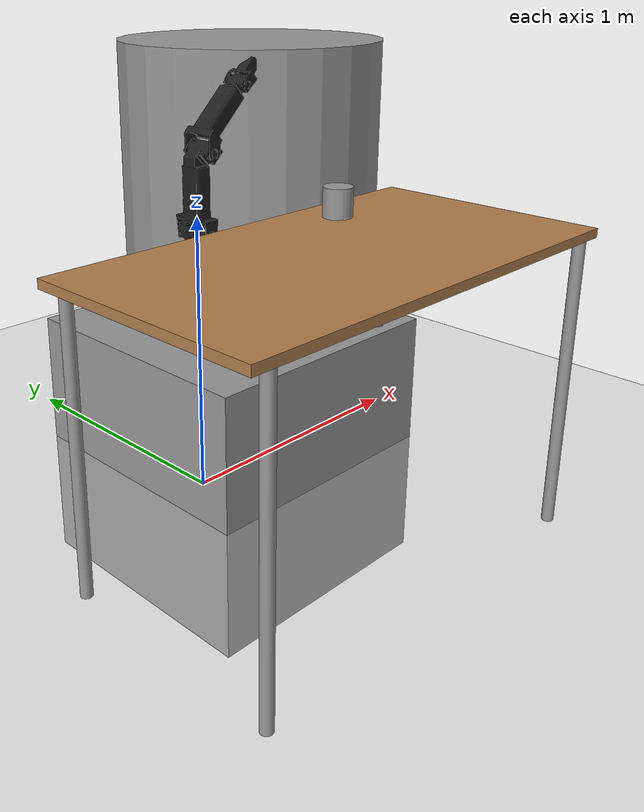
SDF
<sdf version="1.4">
 <world name="default">
  <model name="ground_plane">
   <static>1</static>
   <link name="link">
    <collision name="collision">
     <geometry><plane><normal>0 0 1</normal><size>100 100</size></plane></geometry>
     <surface><friction><ode><mu>100</mu><mu2>50</mu2></ode></friction></surface>
    </collision>
    <visual name="visual">
     <cast_shadows>0</cast_shadows>
     <geometry><plane><normal>0 0 1</normal><size>100 100</size></plane></geometry>
     <material>
      <script><uri>file://media/materials/scripts/gazebo.material</uri><name>Gazebo/Grey</name></script>
     </material>
    </visual>
    <velocity_decay><linear>0</linear><angular>0</angular></velocity_decay>
   </link>
  </model>
  <light name="sun" type="directional">
   <pose>0 0 10 0 -0 0</pose>
   <diffuse>0.8 0.8 0.8 1</diffuse>
   <specular>0.2 0.2 0.2 1</specular>
   <attenuation>
    <range>1000</range>
    <constant>0.9</constant>
    <linear>0.01</linear>
    <quadratic>0.001</quadratic>
   </attenuation>
   <direction>-0.5 0.1 -0.9</direction>
  </light>
  <physics type="ode">
   <max_step_size>0.001</max_step_size>
   <real_time_factor>1</real_time_factor>
   <real_time_update_rate>1000</real_time_update_rate>
   <gravity>0 0 -9.8</gravity>
  </physics>
  <scene><ambient>0.4 0.4 0.4 1</ambient><background>0.7 0.7 0.7 1</background><shadows>1</shadows></scene>
  <spherical_coordinates>
   <surface_model>EARTH_WGS84</surface_model>
   <latitude_deg>0</latitude_deg>
   <longitude_deg>0</longitude_deg>
   <elevation>0</elevation>
   <heading_deg>0</heading_deg>
  </spherical_coordinates>
  <model name="robotis_manipulator_h">
   <link name="link1">
    <inertial>
     <mass>0.936</mass>
     <inertia><ixx>1</ixx><ixy>0</ixy><ixz>0</ixz><iyy>1</iyy><iyz>0</iyz><izz>1</izz></inertia>
    </inertial>
    <collision name="link1_collision">
     <pose>0 0 0.063 0 -0 -3.14159</pose>
     <geometry><box><size>0.06 0.06 0.126</size></box></geometry>
     <surface><friction><ode><mu>0.2</mu><mu2>0.2</mu2></ode></friction></surface>
    </collision>
    <visual name="link1_visual">
     <pose>0 0 0 0 -0 -3.14159</pose>
     <geometry>
      <mesh>
       <scale>0.001 0.001 0.001</scale>
       <uri>/home/cat/catkin_ws/src/ROBOTIS-MANIPULATOR/robotis_manipulator_h_description/meshes/link_1.stl</uri>
      </mesh>
     </geometry>
     <material><script><name>Gazebo/Black</name><uri>__default__</uri></script></material>
    </visual>
    <velocity_decay><linear>0</linear><angular>0</angular></velocity_decay>
   </link>
   <joint name="world_fixed" type="revolute">
    <child>link1</child>
    <parent>world</parent>
    <axis>
     <limit><lower>0</lower><upper>0</upper></limit>
     <dynamics><damping>0</damping></dynamics>
     <xyz>0 0 1</xyz>
    </axis>
   </joint>
   <link name="link2">
    <pose>0 0 0.126 0 -0 0</pose>
    <inertial>
     <mass>1.03</mass>
     <inertia><ixx>1</ixx><ixy>0</ixy><ixz>0</ixz><iyy>1</iyy><iyz>0</iyz><izz>1</izz></inertia>
    </inertial>
    <collision name="link2_collision">
     <pose>0 0 0.033 0 -0 -3.14159</pose>
     <geometry><box><size>0.07 0.15 0.08</size></box></geometry>
     <surface><friction><ode><mu>0.2</mu><mu2>0.2</mu2></ode></friction></surface>
    </collision>
    <visual name="link2_visual">
     <pose>0 0 -0.126 0 -0 -3.14159</pose>
     <geometry>
      <mesh>
       <scale>0.001 0.001 0.001</scale>
       <uri>/home/cat/catkin_ws/src/ROBOTIS-MANIPULATOR/robotis_manipulator_h_description/meshes/link_2.stl</uri>
      </mesh>
     </geometry>
     <material><script><name>Gazebo/Black</name><uri>__default__</uri></script></material>
    </visual>
    <velocity_decay><linear>0</linear><angular>0</angular></velocity_decay>
   </link>
   <joint name="joint1" type="revolute">
    <child>link2</child>
    <parent>link1</parent>
    <axis>
     <xyz>0 0 1</xyz>
     <limit><lower>-1.88496</lower><upper>1.88496</upper><effort>1000</effort><velocity>6.5</velocity></limit>
     <dynamics><damping>0.7</damping></dynamics>
    </axis>
   </joint>
   <link name="link3">
    <pose>0 0 0.159 0 -0 0</pose>
    <inertial>
     <mass>1.404</mass>
     <inertia><ixx>1</ixx><ixy>0</ixy><ixz>0</ixz><iyy>1</iyy><iyz>0</iyz><izz>1</izz></inertia>
    </inertial>
    <collision name="link3_collision">
     <pose>0.02 0 0.15 0 -0 -3.14159</pose>
     <geometry><box><size>0.1 0.15 0.25</size></box></geometry>
     <surface><friction><ode><mu>0.2</mu><mu2>0.2</mu2></ode></friction></surface>
    </collision>
    <visual name="link3_visual">
     <pose>0 0 -0.159 0 -0 -3.14159</pose>
     <geometry>
      <mesh>
       <scale>0.001 0.001 0.001</scale>
       <uri>/home/cat/catkin_ws/src/ROBOTIS-MANIPULATOR/robotis_manipulator_h_description/meshes/link_3.stl</uri>
      </mesh>
     </geometry>
     <material><script><name>Gazebo/Black</name><uri>__default__</uri></script></material>
    </visual>
    <velocity_decay><linear>0</linear><angular>0</angular></velocity_decay>
   </link>
   <joint name="joint2" type="revolute">
    <child>link3</child>
    <parent>link2</parent>
    <axis>
     <xyz>0 1 0</xyz>
     <limit><lower>-1.41372</lower><upper>1.41372</upper><effort>1000</effort><velocity>6.5</velocity></limit>
     <dynamics><damping>0.7</damping></dynamics>
    </axis>
   </joint>
   <link name="link4">
    <pose>0.03 0 0.423 0 0.785398 0</pose>
    <inertial>
     <mass>1.236</mass>
     <inertia><ixx>1</ixx><ixy>0</ixy><ixz>0</ixz><iyy>1</iyy><iyz>0</iyz><izz>1</izz></inertia>
    </inertial>
    <collision name="link4_collision">
     <pose>-0.01 0 0.1 0 -0 -3.14159</pose>
     <geometry><box><size>0.1 0.15 0.25</size></box></geometry>
     <surface><friction><ode><mu>0.2</mu><mu2>0.2</mu2></ode></friction></surface>
    </collision>
    <visual name="link4_visual">
     <pose>-0.03 0 -0.423 0 -0 -3.14159</pose>
     <geometry>
      <mesh>
       <scale>0.001 0.001 0.001</scale>
       <uri>/home/cat/catkin_ws/src/ROBOTIS-MANIPULATOR/robotis_manipulator_h_description/meshes/link_4.stl</uri>
      </mesh>
     </geometry>
     <material><script><name>Gazebo/Black</name><uri>__default__</uri></script></material>
    </visual>
    <velocity_decay><linear>0</linear><angular>0</angular></velocity_decay>
   </link>
   <joint name="joint3" type="revolute">
    <child>link4</child>
    <parent>link3</parent>
    <axis>
     <xyz>0 1 0</xyz>
     <limit><lower>-1.25664</lower><upper>2.19911</upper><effort>1000</effort><velocity>6.5</velocity></limit>
     <dynamics><damping>0.7</damping></dynamics>
    </axis>
   </joint>
   <link name="link5">
    <pose>0.172128 0 0.607555 0 0.785398 0</pose>
    <inertial>
     <mass>0.491</mass>
     <inertia><ixx>1</ixx><ixy>0</ixy><ixz>0</ixz><iyy>1</iyy><iyz>0</iyz><izz>1</izz></inertia>
    </inertial>
    <collision name="link5_collision">
     <pose>0 0 0.03 0 -0 -3.14159</pose>
     <geometry><box><size>0.06 0.13 0.09</size></box></geometry>
     <surface><friction><ode><mu>0.2</mu><mu2>0.2</mu2></ode></friction></surface>
    </collision>
    <visual name="link5_visual">
     <pose>0 0 -0.654 0 -0 -3.14159</pose>
     <geometry>
      <mesh>
       <scale>0.001 0.001 0.001</scale>
       <uri>/home/cat/catkin_ws/src/ROBOTIS-MANIPULATOR/robotis_manipulator_h_description/meshes/link_5.stl</uri>
      </mesh>
     </geometry>
     <material><script><name>Gazebo/Black</name><uri>__default__</uri></script></material>
    </visual>
    <velocity_decay><linear>0</linear><angular>0</angular></velocity_decay>
   </link>
   <joint name="joint4" type="revolute">
    <child>link5</child>
    <parent>link4</parent>
    <axis>
     <xyz>0.707107 0 0.707107</xyz>
     <limit><lower>-1.88496</lower><upper>1.88496</upper><effort>1000</effort><velocity>6.5</velocity></limit>
     <dynamics><damping>0.7</damping></dynamics>
    </axis>
   </joint>
   <link name="link6">
    <pose>0.19122 0 0.626647 0 0.785398 0</pose>
    <inertial>
     <mass>0.454</mass>
     <inertia><ixx>1</ixx><ixy>0</ixy><ixz>0</ixz><iyy>1</iyy><iyz>0</iyz><izz>1</izz></inertia>
    </inertial>
    <collision name="link6_collision">
     <pose>0 0 0.08 0 -0 -3.14159</pose>
     <geometry><box><size>0.07 0.07 0.08</size></box></geometry>
     <surface><friction><ode><mu>0.2</mu><mu2>0.2</mu2></ode></friction></surface>
    </collision>
    <visual name="link6_visual">
     <pose>0 0 -0.681 0 -0 -3.14159</pose>
     <geometry>
      <mesh>
       <scale>0.001 0.001 0.001</scale>
       <uri>/home/cat/catkin_ws/src/ROBOTIS-MANIPULATOR/robotis_manipulator_h_description/meshes/link_6.stl</uri>
      </mesh>
     </geometry>
     <material><script><name>Gazebo/Black</name><uri>__default__</uri></script></material>
    </visual>
    <velocity_decay><linear>0</linear><angular>0</angular></velocity_decay>
   </link>
   <joint name="joint5" type="revolute">
    <child>link6</child>
    <parent>link5</parent>
    <axis>
     <xyz>0 1 0</xyz>
     <limit><lower>-1.41372</lower><upper>1.41372</upper><effort>1000</effort><velocity>6.5</velocity></limit>
     <dynamics><damping>0.7</damping></dynamics>
    </axis>
   </joint>
   <link name="end_effector">
    <pose>0.278194 0 0.713621 0 0.785398 0</pose>
    <inertial>
     <mass>0.001</mass>
     <inertia><ixx>1</ixx><ixy>0</ixy><ixz>0</ixz><iyy>1</iyy><iyz>0</iyz><izz>1</izz></inertia>
    </inertial>
    <collision name="end_effector_collision">
     <geometry><box><size>0.01 0.01 0.01</size></box></geometry>
     <surface><friction><ode><mu>0.2</mu><mu2>0.2</mu2></ode></friction></surface>
    </collision>
    <visual name="end_effector_visual">
     <geometry><box><size>0.01 0.01 0.01</size></box></geometry>
     <material><script><name>Gazebo/Red</name><uri>__default__</uri></script></material>
    </visual>
    <velocity_decay><linear>0</linear><angular>0</angular></velocity_decay>
   </link>
   <joint name="joint6" type="revolute">
    <child>end_effector</child>
    <parent>link6</parent>
    <axis>
     <xyz>0.707107 0 0.707107</xyz>
     <limit><lower>-1.88496</lower><upper>1.88496</upper><effort>1000</effort><velocity>6.5</velocity></limit>
     <dynamics><damping>0.7</damping></dynamics>
    </axis>
   </joint>
   <static>0</static>
   <plugin name="gazebo_ros_control" filename="libgazebo_ros_control.so">
    <robotNamespace>/robotis_manipulator_h</robotNamespace>
    <robotSimType>gazebo_ros_control/DefaultRobotHWSim</robotSimType>
   </plugin>
   <pose>0 0 0.79 0 -0 0</pose>
  </model>
  <model name="table_0">
   <static>1</static>
   <link name="link">
    <collision name="surface">
     <geometry><box><size>1 1 0.3</size></box></geometry>
     <surface><friction><ode><mu>0.6</mu><mu2>0.6</mu2></ode></friction></surface>
    </collision>
    <visual name="visual1">
     <pose>0 0 1 0 -0 0</pose>
     <geometry><box><size>1.5 0.8 0.03</size></box></geometry>
     <material>
      <script><uri>file://media/materials/scripts/gazebo.material</uri><name>Gazebo/Wood</name></script>
     </material>
    </visual>
    <collision name="front_left_leg">
     <pose>0.68 0.38 0.5 0 -0 0</pose>
     <geometry><cylinder><radius>0.02</radius><length>1</length></cylinder></geometry>
    </collision>
    <visual name="front_left_leg">
     <pose>0.68 0.38 0.5 0 -0 0</pose>
     <geometry><cylinder><radius>0.02</radius><length>1</length></cylinder></geometry>
     <material>
      <script><uri>file://media/materials/scripts/gazebo.material</uri><name>Gazebo/Grey</name></script>
     </material>
    </visual>
    <collision name="front_right_leg">
     <pose>0.68 -0.38 0.5 0 -0 0</pose>
     <geometry><cylinder><radius>0.02</radius><length>1</length></cylinder></geometry>
    </collision>
    <visual name="front_right_leg">
     <pose>0.68 -0.38 0.5 0 -0 0</pose>
     <geometry><cylinder><radius>0.02</radius><length>1</length></cylinder></geometry>
     <material>
      <script><uri>file://media/materials/scripts/gazebo.material</uri><name>Gazebo/Grey</name></script>
     </material>
    </visual>
    <collision name="back_right_leg">
     <pose>-0.68 -0.38 0.5 0 -0 0</pose>
     <geometry><cylinder><radius>0.02</radius><length>1</length></cylinder></geometry>
    </collision>
    <visual name="back_right_leg">
     <pose>-0.68 -0.38 0.5 0 -0 0</pose>
     <geometry><cylinder><radius>0.02</radius><length>1</length></cylinder></geometry>
     <material>
      <script><uri>file://media/materials/scripts/gazebo.material</uri><name>Gazebo/Grey</name></script>
     </material>
    </visual>
    <collision name="back_left_leg">
     <pose>-0.68 0.38 0.5 0 -0 0</pose>
     <geometry><cylinder><radius>0.02</radius><length>1</length></cylinder></geometry>
    </collision>
    <visual name="back_left_leg">
     <pose>-0.68 0.38 0.5 0 -0 0</pose>
     <geometry><cylinder><radius>0.02</radius><length>1</length></cylinder></geometry>
     <material>
      <script><uri>file://media/materials/scripts/gazebo.material</uri><name>Gazebo/Grey</name></script>
     </material>
    </visual>
    <velocity_decay><linear>0</linear><angular>0</angular></velocity_decay>
   </link>
   <pose>-0.002199 -0.623207 0 0 -0 0</pose>
  </model>
  <model name="unit_cylinder_1">
   <pose>0.284852 -0.362794 1.065 0 -0 0</pose>
   <link name="link">
    <inertial>
     <mass>1</mass>
     <inertia><ixx>1</ixx><ixy>0</ixy><ixz>0</ixz><iyy>1</iyy><iyz>0</iyz><izz>1</izz></inertia>
    </inertial>
    <collision name="collision">
     <geometry><cylinder><radius>0.05</radius><length>0.1</length></cylinder></geometry>
    </collision>
    <visual name="visual">
     <geometry><cylinder><radius>0.05</radius><length>0.1</length></cylinder></geometry>
     <material>
      <script><uri>file://media/materials/scripts/gazebo.material</uri><name>Gazebo/Grey</name></script>
     </material>
    </visual>
    <velocity_decay><linear>0</linear><angular>0</angular></velocity_decay>
    <gravity>0</gravity>
   </link>
   <static>0</static>
  </model>
  <model name="unit_box_0">
   <pose>0.334807 0.194402 0 0 -0 0</pose>
   <link name="link">
    <inertial>
     <mass>1</mass>
     <inertia>
      <ixx>0.166667</ixx>
      <ixy>0</ixy>
      <ixz>0</ixz>
      <iyy>0.166667</iyy>
      <iyz>0</iyz>
      <izz>0.166667</izz>
     </inertia>
    </inertial>
    <collision name="collision"><geometry><box><size>0.888521 0.551257 1.24341</size></box></geometry></collision>
    <visual name="visual">
     <geometry><box><size>1.00001 1 0.999995</size></box></geometry>
     <material>
      <script><uri>file://media/materials/scripts/gazebo.material</uri><name>Gazebo/Grey</name></script>
     </material>
    </visual>
    <velocity_decay><linear>0</linear><angular>0</angular></velocity_decay>
   </link>
   <static>0</static>
  </model>
  <model name="unit_cylinder_0">
   <pose>0.587744 0.35 1.01756 0 -0 0</pose>
   <link name="link">
    <inertial>
     <mass>1</mass>
     <inertia><ixx>0.145833</ixx><ixy>0</ixy><ixz>0</ixz><iyy>0.145833</iyy><iyz>0</iyz><izz>0.125</izz></inertia>
    </inertial>
    <collision name="collision">
     <geometry><cylinder><radius>0.00728471</radius><length>0.238761</length></cylinder></geometry>
    </collision>
    <visual name="visual">
     <geometry><cylinder><radius>0.499999</radius><length>1</length></cylinder></geometry>
     <material>
      <script><uri>file://media/materials/scripts/gazebo.material</uri><name>Gazebo/Grey</name></script>
     </material>
    </visual>
    <velocity_decay><linear>0</linear><angular>0</angular></velocity_decay>
    <gravity>0</gravity>
   </link>
   <static>0</static>
  </model>
 </world>
</sdf>
